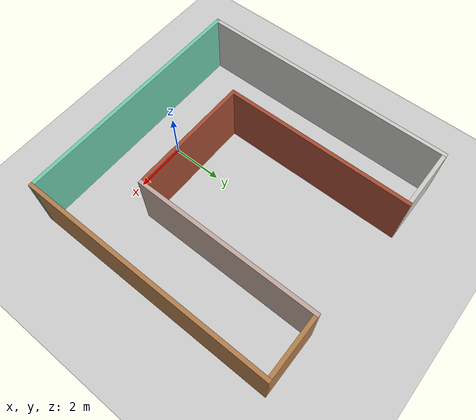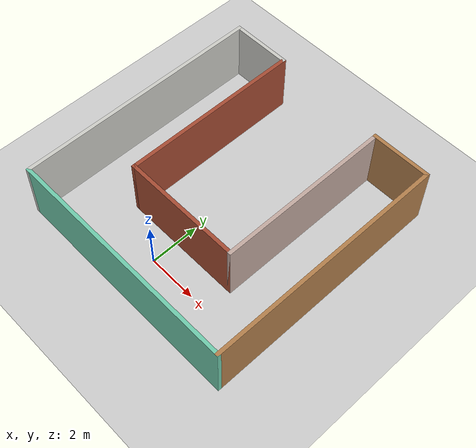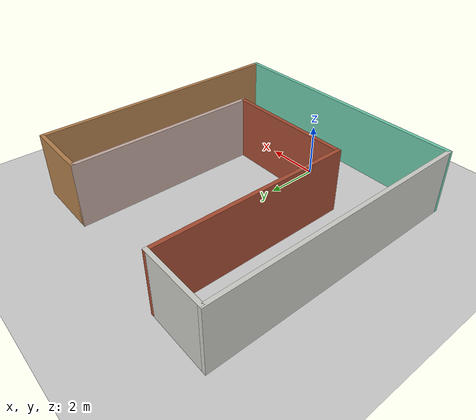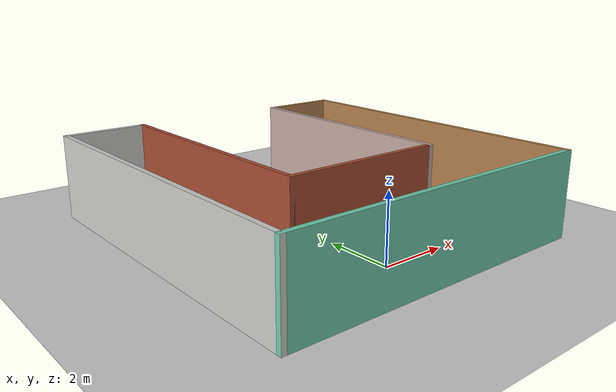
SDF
<sdf version="1.6">
 <world name="default">
  <light name="sun" type="directional">
   <pose>0 0 10 0 -0 0</pose>
   <diffuse>0.8 0.8 0.8 1</diffuse>
   <specular>0.2 0.2 0.2 1</specular>
   <attenuation>
    <range>1000</range>
    <constant>0.9</constant>
    <linear>0.01</linear>
    <quadratic>0.001</quadratic>
   </attenuation>
   <direction>-0.5 0.1 -0.9</direction>
  </light>
  <model name="ground_plane">
   <static>1</static>
   <link name="link">
    <collision name="collision">
     <geometry><plane><normal>0 0 1</normal><size>100 100</size></plane></geometry>
     <surface>
      <contact><collide_bitmask>65535</collide_bitmask></contact>
      <friction><ode><mu>100</mu><mu2>50</mu2></ode></friction>
     </surface>
    </collision>
    <visual name="visual">
     <cast_shadows>0</cast_shadows>
     <geometry><plane><normal>0 0 1</normal><size>100 100</size></plane></geometry>
     <material>
      <script><uri>file://media/materials/scripts/gazebo.material</uri><name>Gazebo/Grey</name></script>
     </material>
    </visual>
   </link>
  </model>
  <gravity>0 0 -9.8</gravity>
  <magnetic_field>6e-06 2.3e-05 -4.2e-05</magnetic_field>
  <atmosphere type="adiabatic"/>
  <physics name="default_physics" default="0" type="ode">
   <max_step_size>0.001</max_step_size>
   <real_time_factor>1</real_time_factor>
   <real_time_update_rate>1000</real_time_update_rate>
  </physics>
  <scene><ambient>0.4 0.4 0.4 1</ambient><background>0.7 0.7 0.7 1</background><shadows>1</shadows></scene>
  <spherical_coordinates>
   <surface_model>EARTH_WGS84</surface_model>
   <latitude_deg>0</latitude_deg>
   <longitude_deg>0</longitude_deg>
   <elevation>0</elevation>
   <heading_deg>0</heading_deg>
  </spherical_coordinates>
  <model name="uworld">
   <pose>0.291593 3.43713 0 0 -0 0</pose>
   <link name="Wall_24">
    <collision name="Wall_24_Collision">
     <geometry><box><size>2.5 0.15 2.5</size></box></geometry>
     <pose>0 0 1.25 0 -0 0</pose>
    </collision>
    <visual name="Wall_24_Visual">
     <pose>0 0 1.25 0 -0 0</pose>
     <geometry><box><size>2.5 0.15 2.5</size></box></geometry>
     <material>
      <script><uri>file://media/materials/scripts/gazebo.material</uri><name>Gazebo/CeilingTiled</name></script>
      <ambient>1 1 1 1</ambient>
     </material>
     <meta><layer>0</layer></meta>
    </visual>
    <pose>-3.575 5.05 0 0 -0 0</pose>
   </link>
   <link name="Wall_25">
    <collision name="Wall_25_Collision">
     <geometry><box><size>7.5 0.15 2.5</size></box></geometry>
     <pose>0 0 1.25 0 -0 0</pose>
    </collision>
    <visual name="Wall_25_Visual">
     <pose>0 0 1.25 0 -0 0</pose>
     <geometry><box><size>7.5 0.15 2.5</size></box></geometry>
     <material>
      <script><uri>file://media/materials/scripts/gazebo.material</uri><name>Gazebo/Bricks</name></script>
      <ambient>1 1 1 1</ambient>
     </material>
     <meta><layer>0</layer></meta>
    </visual>
    <pose>-2.4 1.375 0 0 0 -1.5708</pose>
   </link>
   <link name="Wall_26">
    <collision name="Wall_26_Collision">
     <geometry><box><size>5 0.15 2.5</size></box></geometry>
     <pose>0 0 1.25 0 -0 0</pose>
    </collision>
    <visual name="Wall_26_Visual">
     <pose>0 0 1.25 0 -0 0</pose>
     <geometry><box><size>5 0.15 2.5</size></box></geometry>
     <material>
      <script><uri>file://media/materials/scripts/gazebo.material</uri><name>Gazebo/Bricks</name></script>
      <ambient>1 1 1 1</ambient>
     </material>
     <meta><layer>0</layer></meta>
    </visual>
    <pose>0.025 -2.3 0 0 -0 0</pose>
   </link>
   <link name="Wall_27">
    <collision name="Wall_27_Collision">
     <geometry><box><size>7.25 0.15 2.5</size></box></geometry>
     <pose>0 0 1.25 0 -0 0</pose>
    </collision>
    <visual name="Wall_27_Visual">
     <pose>0 0 1.25 0 -0 0</pose>
     <geometry><box><size>7.25 0.15 2.5</size></box></geometry>
     <material>
      <script><uri>file://media/materials/scripts/gazebo.material</uri><name>Gazebo/Grey</name></script>
      <ambient>0.760784 0.662745 0.627451 1</ambient>
     </material>
     <meta><layer>0</layer></meta>
    </visual>
    <pose>2.45 1.25 0 0 -0 1.5708</pose>
   </link>
   <link name="Wall_28">
    <collision name="Wall_28_Collision">
     <geometry><box><size>2.5 0.15 2.5</size></box></geometry>
     <pose>0 0 1.25 0 -0 0</pose>
    </collision>
    <visual name="Wall_28_Visual">
     <pose>0 0 1.25 0 -0 0</pose>
     <geometry><box><size>2.5 0.15 2.5</size></box></geometry>
     <material>
      <script><uri>file://media/materials/scripts/gazebo.material</uri><name>Gazebo/Wood</name></script>
      <ambient>1 1 1 1</ambient>
     </material>
     <meta><layer>0</layer></meta>
    </visual>
    <pose>3.625 4.8 0 0 -0 0</pose>
   </link>
   <link name="Wall_29">
    <collision name="Wall_29_Collision">
     <geometry><box><size>10 0.15 2.5</size></box></geometry>
     <pose>0 0 1.25 0 -0 0</pose>
    </collision>
    <visual name="Wall_29_Visual">
     <pose>0 0 1.25 0 -0 0</pose>
     <geometry><box><size>10 0.15 2.5</size></box></geometry>
     <material>
      <script><uri>file://media/materials/scripts/gazebo.material</uri><name>Gazebo/Wood</name></script>
      <ambient>1 1 1 1</ambient>
     </material>
     <meta><layer>0</layer></meta>
    </visual>
    <pose>4.8 -0.125 0 0 0 -1.5708</pose>
   </link>
   <link name="Wall_30">
    <collision name="Wall_30_Collision">
     <geometry><box><size>9.75 0.15 2.5</size></box></geometry>
     <pose>0 0 1.25 0 -0 0</pose>
    </collision>
    <visual name="Wall_30_Visual">
     <pose>0 0 1.25 0 -0 0</pose>
     <geometry><box><size>9.75 0.15 2.5</size></box></geometry>
     <material>
      <script><uri>file://media/materials/scripts/gazebo.material</uri><name>Gazebo/Grey</name></script>
      <ambient>0.435294 0.796078 0.67451 1</ambient>
     </material>
     <meta><layer>0</layer></meta>
    </visual>
    <pose>0 -5.05 0 0 -0 3.14159</pose>
   </link>
   <link name="Wall_31">
    <collision name="Wall_31_Collision">
     <geometry><box><size>10.2501 0.15 2.5</size></box></geometry>
     <pose>0 0 1.25 0 -0 0</pose>
    </collision>
    <visual name="Wall_31_Visual">
     <pose>0 0 1.25 0 -0 0</pose>
     <geometry><box><size>10.2501 0.15 2.5</size></box></geometry>
     <material>
      <script><uri>file://media/materials/scripts/gazebo.material</uri><name>Gazebo/CeilingTiled</name></script>
      <ambient>1 1 1 1</ambient>
     </material>
     <meta><layer>0</layer></meta>
    </visual>
    <pose>-4.8 0 0 0 -0 1.5708</pose>
   </link>
   <static>1</static>
  </model>
 </world>
</sdf>
